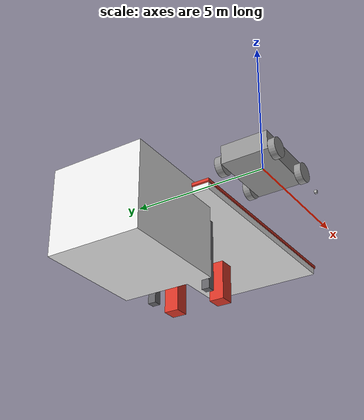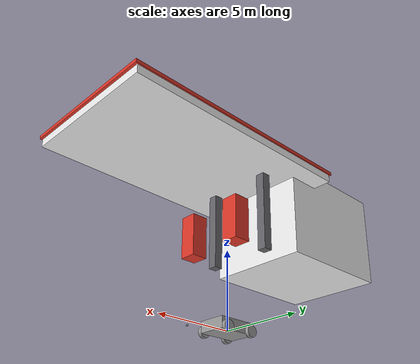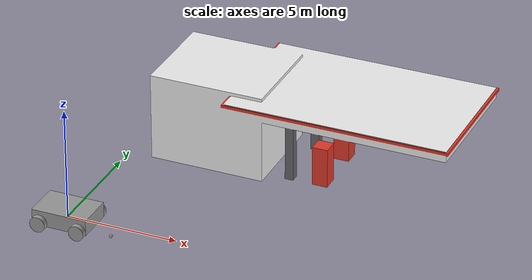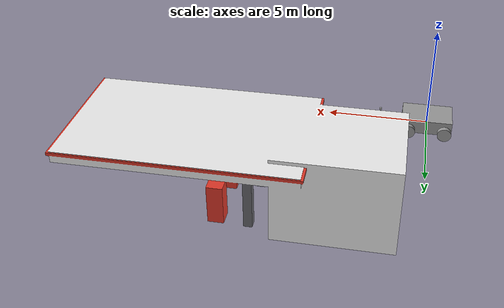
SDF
<?xml version='1.0'?>
<sdf version='1.6'>
  <model name='RGB_Teleop_Car'>
    <link name='link_0'>
      <inertial>
        <mass>3.1434</mass>
        <inertia>
          <ixx>0.877717</ixx>
          <ixy>0</ixy>
          <ixz>0</ixz>
          <iyy>1.7594</iyy>
          <iyz>0</iyz>
          <izz>2.39269</izz>
        </inertia>
        <pose frame=''>0 0 0 0 -0 0</pose>
      </inertial>
      <pose frame=''>-0 -0 0.16 0 -0 0</pose>
      <gravity>1</gravity>
      <self_collide>0</self_collide>
      <kinematic>0</kinematic>
      <enable_wind>0</enable_wind>
      <visual name='visual'>
        <pose frame=''>0 0 0 0 -0 0</pose>
        <geometry>
          <box>
            <size>2.5 1.7 0.7</size>
          </box>
        </geometry>
        <material>
          <lighting>1</lighting>
          <script>
            <uri>file://media/materials/scripts/gazebo.material</uri>
            <name>Gazebo/Grey</name>
          </script>
          <shader type='vertex'>
            <normal_map>__default__</normal_map>
          </shader>
          <ambient>0.3 0.3 0.3 1</ambient>
          <diffuse>0.7 0.7 0.7 1</diffuse>
          <specular>0.01 0.01 0.01 1</specular>
          <emissive>0 0 0 1</emissive>
        </material>
        <transparency>0</transparency>
        <cast_shadows>1</cast_shadows>
      </visual>
      <collision name='collision'>
        <laser_retro>0</laser_retro>
        <max_contacts>10</max_contacts>
        <pose frame=''>0 0 0 0 -0 0</pose>
        <geometry>
          <box>
            <size>2.5 1.69828 0.683043</size>
          </box>
        </geometry>
        <surface>
          <friction>
            <ode>
              <mu>1</mu>
              <mu2>1</mu2>
              <fdir1>0 0 0</fdir1>
              <slip1>0</slip1>
              <slip2>0</slip2>
            </ode>
            <torsional>
              <coefficient>1</coefficient>
              <patch_radius>0</patch_radius>
              <surface_radius>0</surface_radius>
              <use_patch_radius>1</use_patch_radius>
              <ode>
                <slip>0</slip>
              </ode>
            </torsional>
          </friction>
          <bounce>
            <restitution_coefficient>0</restitution_coefficient>
            <threshold>1e+06</threshold>
          </bounce>
          <contact>
            <collide_without_contact>0</collide_without_contact>
            <collide_without_contact_bitmask>1</collide_without_contact_bitmask>
            <collide_bitmask>1</collide_bitmask>
            <ode>
              <soft_cfm>0</soft_cfm>
              <soft_erp>0.2</soft_erp>
              <kp>1e+13</kp>
              <kd>1</kd>
              <max_vel>0.01</max_vel>
              <min_depth>0</min_depth>
            </ode>
            <bullet>
              <split_impulse>1</split_impulse>
              <split_impulse_penetration_threshold>-0.01</split_impulse_penetration_threshold>
              <soft_cfm>0</soft_cfm>
              <soft_erp>0.2</soft_erp>
              <kp>1e+13</kp>
              <kd>1</kd>
            </bullet>
          </contact>
        </surface>
      </collision>
    </link>
    <link name='link_0_0'>
      <inertial>
        <mass>0.0218115</mass>
        <inertia>
          <ixx>0.00528267</ixx>
          <ixy>0</ixy>
          <ixz>0</ixz>
          <iyy>0.00528267</iyy>
          <iyz>0</iyz>
          <izz>5.94636e-05</izz>
        </inertia>
        <pose frame=''>0 0 0 0 -0 0</pose>
      </inertial>
      <pose frame=''>0.866921 -2.6e-05 -0.073072 1.57 -0 0</pose>
      <gravity>1</gravity>
      <self_collide>0</self_collide>
      <kinematic>0</kinematic>
      <enable_wind>0</enable_wind>
      <visual name='visual'>
        <pose frame=''>0 0 0 0 -0 0</pose>
        <geometry>
          <cylinder>
            <radius>0.073841</radius>
            <length>1.7</length>
          </cylinder>
        </geometry>
        <material>
          <lighting>1</lighting>
          <script>
            <uri>file://media/materials/scripts/gazebo.material</uri>
            <name>Gazebo/Grey</name>
          </script>
          <shader type='vertex'>
            <normal_map>__default__</normal_map>
          </shader>
          <ambient>0.3 0.3 0.3 1</ambient>
          <diffuse>0.7 0.7 0.7 1</diffuse>
          <specular>0.01 0.01 0.01 1</specular>
          <emissive>0 0 0 1</emissive>
        </material>
        <transparency>0</transparency>
        <cast_shadows>1</cast_shadows>
      </visual>
      <collision name='collision'>
        <laser_retro>0</laser_retro>
        <max_contacts>10</max_contacts>
        <pose frame=''>0 0 0 0 -0 0</pose>
        <geometry>
          <cylinder>
            <radius>0.073841</radius>
            <length>1.7</length>
          </cylinder>
        </geometry>
        <surface>
          <friction>
            <ode>
              <mu>1</mu>
              <mu2>1</mu2>
              <fdir1>0 0 0</fdir1>
              <slip1>0</slip1>
              <slip2>0</slip2>
            </ode>
            <torsional>
              <coefficient>1</coefficient>
              <patch_radius>0</patch_radius>
              <surface_radius>0</surface_radius>
              <use_patch_radius>1</use_patch_radius>
              <ode>
                <slip>0</slip>
              </ode>
            </torsional>
          </friction>
          <bounce>
            <restitution_coefficient>0</restitution_coefficient>
            <threshold>1e+06</threshold>
          </bounce>
          <contact>
            <collide_without_contact>0</collide_without_contact>
            <collide_without_contact_bitmask>1</collide_without_contact_bitmask>
            <collide_bitmask>1</collide_bitmask>
            <ode>
              <soft_cfm>0</soft_cfm>
              <soft_erp>0.2</soft_erp>
              <kp>1e+13</kp>
              <kd>1</kd>
              <max_vel>0.01</max_vel>
              <min_depth>0</min_depth>
            </ode>
            <bullet>
              <split_impulse>1</split_impulse>
              <split_impulse_penetration_threshold>-0.01</split_impulse_penetration_threshold>
              <soft_cfm>0</soft_cfm>
              <soft_erp>0.2</soft_erp>
              <kp>1e+13</kp>
              <kd>1</kd>
            </bullet>
          </contact>
        </surface>
      </collision>
    </link>
    <link name='link_0_0_clone'>
      <inertial>
        <mass>0.0218115</mass>
        <inertia>
          <ixx>0.00528267</ixx>
          <ixy>0</ixy>
          <ixz>0</ixz>
          <iyy>0.00528267</iyy>
          <iyz>0</iyz>
          <izz>5.94636e-05</izz>
        </inertia>
        <pose frame=''>0 0 0 0 -0 0</pose>
      </inertial>
      <pose frame=''>-0.89931 -0.00067 -0.039992 1.57 -2.8e-05 0.000745</pose>
      <gravity>1</gravity>
      <self_collide>0</self_collide>
      <kinematic>0</kinematic>
      <enable_wind>0</enable_wind>
      <visual name='visual'>
        <pose frame=''>0 0 0 0 -0 0</pose>
        <geometry>
          <cylinder>
            <radius>0.073841</radius>
            <length>1.7</length>
          </cylinder>
        </geometry>
        <material>
          <lighting>1</lighting>
          <script>
            <uri>file://media/materials/scripts/gazebo.material</uri>
            <name>Gazebo/Grey</name>
          </script>
          <shader type='vertex'>
            <normal_map>__default__</normal_map>
          </shader>
          <ambient>0.3 0.3 0.3 1</ambient>
          <diffuse>0.7 0.7 0.7 1</diffuse>
          <specular>0.01 0.01 0.01 1</specular>
          <emissive>0 0 0 1</emissive>
        </material>
        <transparency>0</transparency>
        <cast_shadows>1</cast_shadows>
      </visual>
      <collision name='collision'>
        <laser_retro>0</laser_retro>
        <max_contacts>10</max_contacts>
        <pose frame=''>0 0 0 0 -0 0</pose>
        <geometry>
          <cylinder>
            <radius>0.073841</radius>
            <length>1.7</length>
          </cylinder>
        </geometry>
        <surface>
          <friction>
            <ode>
              <mu>1</mu>
              <mu2>1</mu2>
              <fdir1>0 0 0</fdir1>
              <slip1>0</slip1>
              <slip2>0</slip2>
            </ode>
            <torsional>
              <coefficient>1</coefficient>
              <patch_radius>0</patch_radius>
              <surface_radius>0</surface_radius>
              <use_patch_radius>1</use_patch_radius>
              <ode>
                <slip>0</slip>
              </ode>
            </torsional>
          </friction>
          <bounce>
            <restitution_coefficient>0</restitution_coefficient>
            <threshold>1e+06</threshold>
          </bounce>
          <contact>
            <collide_without_contact>0</collide_without_contact>
            <collide_without_contact_bitmask>1</collide_without_contact_bitmask>
            <collide_bitmask>1</collide_bitmask>
            <ode>
              <soft_cfm>0</soft_cfm>
              <soft_erp>0.2</soft_erp>
              <kp>1e+13</kp>
              <kd>1</kd>
              <max_vel>0.01</max_vel>
              <min_depth>0</min_depth>
            </ode>
            <bullet>
              <split_impulse>1</split_impulse>
              <split_impulse_penetration_threshold>-0.01</split_impulse_penetration_threshold>
              <soft_cfm>0</soft_cfm>
              <soft_erp>0.2</soft_erp>
              <kp>1e+13</kp>
              <kd>1</kd>
            </bullet>
          </contact>
        </surface>
      </collision>
    </link>
    <link name='link_1'>
      <inertial>
        <mass>0.243107</mass>
        <inertia>
          <ixx>0.00864251</ixx>
          <ixy>0</ixy>
          <ixz>0</ixz>
          <iyy>0.00864251</iyy>
          <iyz>0</iyz>
          <izz>0.0148903</izz>
        </inertia>
        <pose frame=''>0 0 0 0 -0 0</pose>
      </inertial>
      <pose frame=''>0.9 -0.970974 -0.04 1.57 -0 0</pose>
      <gravity>1</gravity>
      <self_collide>0</self_collide>
      <kinematic>0</kinematic>
      <enable_wind>0</enable_wind>
      <visual name='visual'>
        <pose frame=''>0 0 0 0 -0 0</pose>
        <geometry>
          <cylinder>
            <radius>0.35</radius>
            <length>0.243109</length>
          </cylinder>
        </geometry>
        <material>
          <lighting>1</lighting>
          <script>
            <uri>file://media/materials/scripts/gazebo.material</uri>
            <name>Gazebo/Grey</name>
          </script>
          <shader type='vertex'>
            <normal_map>__default__</normal_map>
          </shader>
          <ambient>0.3 0.3 0.3 1</ambient>
          <diffuse>0.7 0.7 0.7 1</diffuse>
          <specular>0.01 0.01 0.01 1</specular>
          <emissive>0 0 0 1</emissive>
        </material>
        <transparency>0</transparency>
        <cast_shadows>1</cast_shadows>
      </visual>
      <collision name='collision'>
        <laser_retro>0</laser_retro>
        <max_contacts>10</max_contacts>
        <pose frame=''>0 0 0 0 -0 0</pose>
        <geometry>
          <cylinder>
            <radius>0.35</radius>
            <length>0.243109</length>
          </cylinder>
        </geometry>
        <surface>
          <friction>
            <ode>
              <mu>1</mu>
              <mu2>1</mu2>
              <fdir1>0 0 0</fdir1>
              <slip1>0</slip1>
              <slip2>0</slip2>
            </ode>
            <torsional>
              <coefficient>1</coefficient>
              <patch_radius>0</patch_radius>
              <surface_radius>0</surface_radius>
              <use_patch_radius>1</use_patch_radius>
              <ode>
                <slip>0</slip>
              </ode>
            </torsional>
          </friction>
          <bounce>
            <restitution_coefficient>0</restitution_coefficient>
            <threshold>1e+06</threshold>
          </bounce>
          <contact>
            <collide_without_contact>0</collide_without_contact>
            <collide_without_contact_bitmask>1</collide_without_contact_bitmask>
            <collide_bitmask>1</collide_bitmask>
            <ode>
              <soft_cfm>0</soft_cfm>
              <soft_erp>0.2</soft_erp>
              <kp>1e+13</kp>
              <kd>1</kd>
              <max_vel>0.01</max_vel>
              <min_depth>0</min_depth>
            </ode>
            <bullet>
              <split_impulse>1</split_impulse>
              <split_impulse_penetration_threshold>-0.01</split_impulse_penetration_threshold>
              <soft_cfm>0</soft_cfm>
              <soft_erp>0.2</soft_erp>
              <kp>1e+13</kp>
              <kd>1</kd>
            </bullet>
          </contact>
        </surface>
      </collision>
    </link>
    <link name='link_1_clone'>
      <inertial>
        <mass>0.243107</mass>
        <inertia>
          <ixx>0.00864251</ixx>
          <ixy>0</ixy>
          <ixz>0</ixz>
          <iyy>0.00864251</iyy>
          <iyz>0</iyz>
          <izz>0.0148903</izz>
        </inertia>
        <pose frame=''>0 0 0 0 -0 0</pose>
      </inertial>
      <pose frame=''>0.9 0.970974 -0.04 1.57 -0 0</pose>
      <gravity>1</gravity>
      <self_collide>0</self_collide>
      <kinematic>0</kinematic>
      <enable_wind>0</enable_wind>
      <visual name='visual'>
        <pose frame=''>0 0 0 0 -0 0</pose>
        <geometry>
          <cylinder>
            <radius>0.35</radius>
            <length>0.243109</length>
          </cylinder>
        </geometry>
        <material>
          <lighting>1</lighting>
          <script>
            <uri>file://media/materials/scripts/gazebo.material</uri>
            <name>Gazebo/Grey</name>
          </script>
          <shader type='vertex'>
            <normal_map>__default__</normal_map>
          </shader>
          <ambient>0.3 0.3 0.3 1</ambient>
          <diffuse>0.7 0.7 0.7 1</diffuse>
          <specular>0.01 0.01 0.01 1</specular>
          <emissive>0 0 0 1</emissive>
        </material>
        <transparency>0</transparency>
        <cast_shadows>1</cast_shadows>
      </visual>
      <collision name='collision'>
        <laser_retro>0</laser_retro>
        <max_contacts>10</max_contacts>
        <pose frame=''>0 0 0 0 -0 0</pose>
        <geometry>
          <cylinder>
            <radius>0.35</radius>
            <length>0.243109</length>
          </cylinder>
        </geometry>
        <surface>
          <friction>
            <ode>
              <mu>1</mu>
              <mu2>1</mu2>
              <fdir1>0 0 0</fdir1>
              <slip1>0</slip1>
              <slip2>0</slip2>
            </ode>
            <torsional>
              <coefficient>1</coefficient>
              <patch_radius>0</patch_radius>
              <surface_radius>0</surface_radius>
              <use_patch_radius>1</use_patch_radius>
              <ode>
                <slip>0</slip>
              </ode>
            </torsional>
          </friction>
          <bounce>
            <restitution_coefficient>0</restitution_coefficient>
            <threshold>1e+06</threshold>
          </bounce>
          <contact>
            <collide_without_contact>0</collide_without_contact>
            <collide_without_contact_bitmask>1</collide_without_contact_bitmask>
            <collide_bitmask>1</collide_bitmask>
            <ode>
              <soft_cfm>0</soft_cfm>
              <soft_erp>0.2</soft_erp>
              <kp>1e+13</kp>
              <kd>1</kd>
              <max_vel>0.01</max_vel>
              <min_depth>0</min_depth>
            </ode>
            <bullet>
              <split_impulse>1</split_impulse>
              <split_impulse_penetration_threshold>-0.01</split_impulse_penetration_threshold>
              <soft_cfm>0</soft_cfm>
              <soft_erp>0.2</soft_erp>
              <kp>1e+13</kp>
              <kd>1</kd>
            </bullet>
          </contact>
        </surface>
      </collision>
    </link>
    <link name='link_1_clone_0'>
      <inertial>
        <mass>0.243107</mass>
        <inertia>
          <ixx>0.00864251</ixx>
          <ixy>0</ixy>
          <ixz>0</ixz>
          <iyy>0.00864251</iyy>
          <iyz>0</iyz>
          <izz>0.0148903</izz>
        </inertia>
        <pose frame=''>0 0 0 0 -0 0</pose>
      </inertial>
      <pose frame=''>-0.899995 -0.971895 -0.04 1.57 -0 0</pose>
      <gravity>1</gravity>
      <self_collide>0</self_collide>
      <kinematic>0</kinematic>
      <enable_wind>0</enable_wind>
      <visual name='visual'>
        <pose frame=''>0 0 0 0 -0 0</pose>
        <geometry>
          <cylinder>
            <radius>0.35</radius>
            <length>0.243109</length>
          </cylinder>
        </geometry>
        <material>
          <lighting>1</lighting>
          <script>
            <uri>file://media/materials/scripts/gazebo.material</uri>
            <name>Gazebo/Grey</name>
          </script>
          <shader type='vertex'>
            <normal_map>__default__</normal_map>
          </shader>
          <ambient>0.3 0.3 0.3 1</ambient>
          <diffuse>0.7 0.7 0.7 1</diffuse>
          <specular>0.01 0.01 0.01 1</specular>
          <emissive>0 0 0 1</emissive>
        </material>
        <transparency>0</transparency>
        <cast_shadows>1</cast_shadows>
      </visual>
      <collision name='collision'>
        <laser_retro>0</laser_retro>
        <max_contacts>10</max_contacts>
        <pose frame=''>0 0 0 0 -0 0</pose>
        <geometry>
          <cylinder>
            <radius>0.35</radius>
            <length>0.243109</length>
          </cylinder>
        </geometry>
        <surface>
          <friction>
            <ode>
              <mu>1</mu>
              <mu2>1</mu2>
              <fdir1>0 0 0</fdir1>
              <slip1>0</slip1>
              <slip2>0</slip2>
            </ode>
            <torsional>
              <coefficient>1</coefficient>
              <patch_radius>0</patch_radius>
              <surface_radius>0</surface_radius>
              <use_patch_radius>1</use_patch_radius>
              <ode>
                <slip>0</slip>
              </ode>
            </torsional>
          </friction>
          <bounce>
            <restitution_coefficient>0</restitution_coefficient>
            <threshold>1e+06</threshold>
          </bounce>
          <contact>
            <collide_without_contact>0</collide_without_contact>
            <collide_without_contact_bitmask>1</collide_without_contact_bitmask>
            <collide_bitmask>1</collide_bitmask>
            <ode>
              <soft_cfm>0</soft_cfm>
              <soft_erp>0.2</soft_erp>
              <kp>1e+13</kp>
              <kd>1</kd>
              <max_vel>0.01</max_vel>
              <min_depth>0</min_depth>
            </ode>
            <bullet>
              <split_impulse>1</split_impulse>
              <split_impulse_penetration_threshold>-0.01</split_impulse_penetration_threshold>
              <soft_cfm>0</soft_cfm>
              <soft_erp>0.2</soft_erp>
              <kp>1e+13</kp>
              <kd>1</kd>
            </bullet>
          </contact>
        </surface>
      </collision>
    </link>
    <link name='link_1_clone_1'>
      <inertial>
        <mass>0.243107</mass>
        <inertia>
          <ixx>0.00864251</ixx>
          <ixy>0</ixy>
          <ixz>0</ixz>
          <iyy>0.00864251</iyy>
          <iyz>0</iyz>
          <izz>0.0148903</izz>
        </inertia>
        <pose frame=''>0 0 0 0 -0 0</pose>
      </inertial>
      <pose frame=''>-0.900042 0.990296 -0.04 1.57 -0 0</pose>
      <gravity>1</gravity>
      <self_collide>0</self_collide>
      <kinematic>0</kinematic>
      <enable_wind>0</enable_wind>
      <visual name='visual'>
        <pose frame=''>0 0 0 0 -0 0</pose>
        <geometry>
          <cylinder>
            <radius>0.35</radius>
            <length>0.243109</length>
          </cylinder>
        </geometry>
        <material>
          <lighting>1</lighting>
          <script>
            <uri>file://media/materials/scripts/gazebo.material</uri>
            <name>Gazebo/Grey</name>
          </script>
          <shader type='vertex'>
            <normal_map>__default__</normal_map>
          </shader>
          <ambient>0.3 0.3 0.3 1</ambient>
          <diffuse>0.7 0.7 0.7 1</diffuse>
          <specular>0.01 0.01 0.01 1</specular>
          <emissive>0 0 0 1</emissive>
        </material>
        <transparency>0</transparency>
        <cast_shadows>1</cast_shadows>
      </visual>
      <collision name='collision'>
        <laser_retro>0</laser_retro>
        <max_contacts>10</max_contacts>
        <pose frame=''>0 0 0 0 -0 0</pose>
        <geometry>
          <cylinder>
            <radius>0.35</radius>
            <length>0.243109</length>
          </cylinder>
        </geometry>
        <surface>
          <friction>
            <ode>
              <mu>1</mu>
              <mu2>1</mu2>
              <fdir1>0 0 0</fdir1>
              <slip1>0</slip1>
              <slip2>0</slip2>
            </ode>
            <torsional>
              <coefficient>1</coefficient>
              <patch_radius>0</patch_radius>
              <surface_radius>0</surface_radius>
              <use_patch_radius>1</use_patch_radius>
              <ode>
                <slip>0</slip>
              </ode>
            </torsional>
          </friction>
          <bounce>
            <restitution_coefficient>0</restitution_coefficient>
            <threshold>1e+06</threshold>
          </bounce>
          <contact>
            <collide_without_contact>0</collide_without_contact>
            <collide_without_contact_bitmask>1</collide_without_contact_bitmask>
            <collide_bitmask>1</collide_bitmask>
            <ode>
              <soft_cfm>0</soft_cfm>
              <soft_erp>0.2</soft_erp>
              <kp>1e+13</kp>
              <kd>1</kd>
              <max_vel>0.01</max_vel>
              <min_depth>0</min_depth>
            </ode>
            <bullet>
              <split_impulse>1</split_impulse>
              <split_impulse_penetration_threshold>-0.01</split_impulse_penetration_threshold>
              <soft_cfm>0</soft_cfm>
              <soft_erp>0.2</soft_erp>
              <kp>1e+13</kp>
              <kd>1</kd>
            </bullet>
          </contact>
        </surface>
      </collision>
    </link>
    <model name='Gas Station'>
      <static>1</static>
      <link name='link'>
        <pose frame=''>0 0 0 0 -0 0</pose>
        <collision name='collision'>
          <geometry>
            <mesh>
              <uri>model://gas_station/meshes/gas_station.dae</uri>
            </mesh>
          </geometry>
        </collision>
        <visual name='visual'>
          <geometry>
            <mesh>
              <uri>model://gas_station/meshes/gas_station.dae</uri>
            </mesh>
          </geometry>
          <material>
            <script>
              <uri>model://gas_station/materials/scripts</uri>
              <uri>model://gas_station/materials/textures</uri>
              <name>GasStation/Diffuse</name>
            </script>
            <shader type='normal_map_tangent_space'>
              <normal_map>GasStation_Normal.png</normal_map>
            </shader>
          </material>
        </visual>
      </link>
      <pose frame=''>7.46541 8.09249 5.4e-05 0 -0 0</pose>
    </model>
    <model name='distorted_camera'>
      <link name='link'>
        <pose frame=''>0.05 0.05 0.05 0 -0 0</pose>
        <inertial>
          <mass>0.1</mass>
          <inertia>
            <ixx>0.000166667</ixx>
            <iyy>0.000166667</iyy>
            <izz>0.000166667</izz>
            <ixy>0</ixy>
            <ixz>0</ixz>
            <iyz>0</iyz>
          </inertia>
        </inertial>
        <collision name='collision'>
          <geometry>
            <box>
              <size>0.1 0.1 0.1</size>
            </box>
          </geometry>
          <max_contacts>10</max_contacts>
          <surface>
            <contact>
              <ode/>
            </contact>
            <bounce/>
            <friction>
              <torsional>
                <ode/>
              </torsional>
              <ode/>
            </friction>
          </surface>
        </collision>
        <visual name='visual'>
          <geometry>
            <box>
              <size>0.1 0.1 0.1</size>
            </box>
          </geometry>
        </visual>
        <sensor name='camera1' type='camera'>
          <update_rate>30</update_rate>
          <camera name='head'>
            <horizontal_fov>1.39626</horizontal_fov>
            <image>
              <width>800</width>
              <height>800</height>
              <format>R8G8B8</format>
            </image>
            <clip>
              <near>0.02</near>
              <far>300</far>
            </clip>
            <noise>
              <type>gaussian</type>
              <mean>0</mean>
              <stddev>0.007</stddev>
            </noise>
          </camera>
          <plugin name='camera_controller' filename='libgazebo_ros_camera.so'>
            <alwaysOn>1</alwaysOn>
            <updateRate>0.0</updateRate>
            <cameraName>rrbot/camera1</cameraName>
            <imageTopicName>image_raw</imageTopicName>
            <cameraInfoTopicName>camera_info</cameraInfoTopicName>
            <frameName>camera_link</frameName>
            <hackBaseline>0.07</hackBaseline>
            <distortionK1>0.0</distortionK1>
            <distortionK2>0.0</distortionK2>
            <distortionK3>0.0</distortionK3>
            <distortionT1>0.0</distortionT1>
            <distortionT2>0.0</distortionT2>
          </plugin>
          <always_on>1</always_on>
          <update_rate>30</update_rate>
          <visualize>1</visualize>
        </sensor>
        <self_collide>0</self_collide>
        <enable_wind>0</enable_wind>
        <kinematic>0</kinematic>
      </link>
      <pose frame=''>2.33734 -0.833985 -3.1e-05 0 -0 0</pose>
    </model>
    <joint name='Engine' type='revolute'>
      <parent>link_0</parent>
      <child>link_0_0_clone</child>
      <pose frame=''>0 0 0 0 -0 0</pose>
      <axis>
        <xyz>0 0 1</xyz>
        <use_parent_model_frame>0</use_parent_model_frame>
        <limit>
          <lower>-1.79769e+308</lower>
          <upper>1.79769e+308</upper>
          <effort>-1</effort>
          <velocity>-1</velocity>
        </limit>
        <dynamics>
          <spring_reference>0</spring_reference>
          <spring_stiffness>0</spring_stiffness>
          <damping>0</damping>
          <friction>0</friction>
        </dynamics>
      </axis>
      <physics>
        <ode>
          <limit>
            <cfm>0</cfm>
            <erp>0.2</erp>
          </limit>
          <suspension>
            <cfm>0</cfm>
            <erp>0.2</erp>
          </suspension>
        </ode>
      </physics>
    </joint>
    <joint name='Steering' type='revolute'>
      <parent>link_0</parent>
      <child>link_0_0</child>
      <pose frame=''>0 0 0 0 -0 0</pose>
      <axis>
        <xyz>0 1 0</xyz>
        <use_parent_model_frame>0</use_parent_model_frame>
        <limit>
          <lower>-0.523599</lower>
          <upper>0.523599</upper>
          <effort>-1</effort>
          <velocity>-1</velocity>
        </limit>
        <dynamics>
          <spring_reference>0</spring_reference>
          <spring_stiffness>0</spring_stiffness>
          <damping>0</damping>
          <friction>0</friction>
        </dynamics>
      </axis>
      <physics>
        <ode>
          <limit>
            <cfm>0</cfm>
            <erp>0.2</erp>
          </limit>
          <suspension>
            <cfm>0</cfm>
            <erp>0.2</erp>
          </suspension>
        </ode>
      </physics>
    </joint>
    <joint name='link_0_0_JOINT_1' type='revolute'>
      <parent>link_0_0</parent>
      <child>link_1</child>
      <pose frame=''>0 0 0 0 -0 0</pose>
      <axis>
        <xyz>0 0 1</xyz>
        <use_parent_model_frame>0</use_parent_model_frame>
        <limit>
          <lower>-1.79769e+308</lower>
          <upper>1.79769e+308</upper>
          <effort>-1</effort>
          <velocity>-1</velocity>
        </limit>
        <dynamics>
          <spring_reference>0</spring_reference>
          <spring_stiffness>0</spring_stiffness>
          <damping>0</damping>
          <friction>0</friction>
        </dynamics>
      </axis>
      <physics>
        <ode>
          <limit>
            <cfm>0</cfm>
            <erp>0.2</erp>
          </limit>
          <suspension>
            <cfm>0</cfm>
            <erp>0.2</erp>
          </suspension>
        </ode>
      </physics>
    </joint>
    <joint name='link_0_0_JOINT_2' type='revolute'>
      <parent>link_0_0</parent>
      <child>link_1_clone</child>
      <pose frame=''>0 0 0 0 -0 0</pose>
      <axis>
        <xyz>0 0 -1</xyz>
        <use_parent_model_frame>0</use_parent_model_frame>
        <limit>
          <lower>-1.79769e+308</lower>
          <upper>1.79769e+308</upper>
          <effort>-1</effort>
          <velocity>-1</velocity>
        </limit>
        <dynamics>
          <spring_reference>0</spring_reference>
          <spring_stiffness>0</spring_stiffness>
          <damping>0</damping>
          <friction>0</friction>
        </dynamics>
      </axis>
      <physics>
        <ode>
          <limit>
            <cfm>0</cfm>
            <erp>0.2</erp>
          </limit>
          <suspension>
            <cfm>0</cfm>
            <erp>0.2</erp>
          </suspension>
        </ode>
      </physics>
    </joint>
    <joint name='link_0_0_clone_JOINT_0' type='fixed'>
      <parent>link_0_0_clone</parent>
      <child>link_1_clone_1</child>
      <pose frame=''>0 0 0 0 -0 0</pose>
      <physics>
        <ode>
          <limit>
            <cfm>0</cfm>
            <erp>0.2</erp>
          </limit>
          <suspension>
            <cfm>0</cfm>
            <erp>0.2</erp>
          </suspension>
        </ode>
      </physics>
    </joint>
    <joint name='link_1_clone_0_JOINT_3' type='fixed'>
      <parent>link_0_0_clone</parent>
      <child>link_1_clone_0</child>
      <pose frame=''>0 0 0 0 -0 0</pose>
      <physics>
        <ode>
          <limit>
            <cfm>0</cfm>
            <erp>0.2</erp>
          </limit>
          <suspension>
            <cfm>0</cfm>
            <erp>0.2</erp>
          </suspension>
        </ode>
      </physics>
    </joint>
    <static>0</static>
    <allow_auto_disable>1</allow_auto_disable>
  </model>
</sdf>
